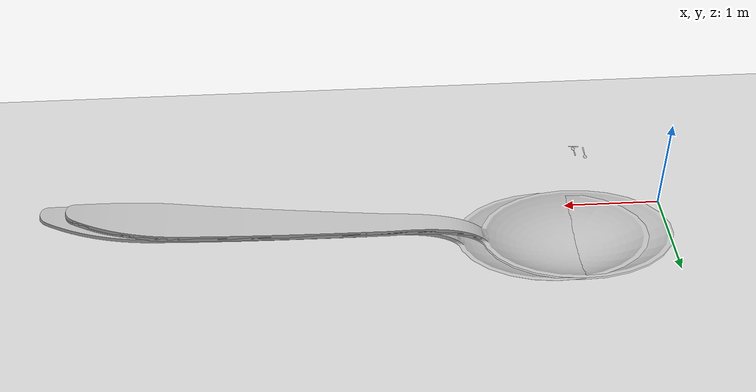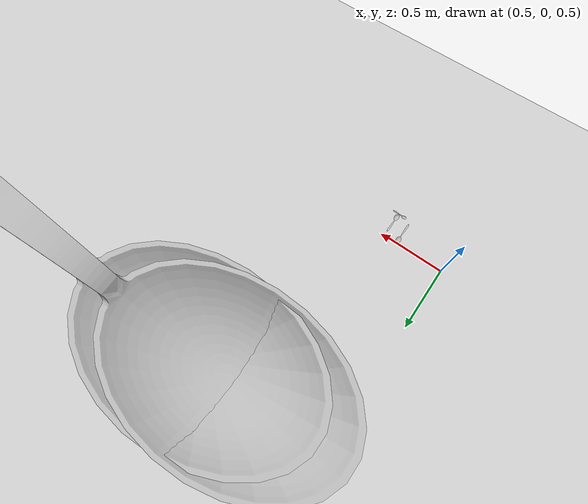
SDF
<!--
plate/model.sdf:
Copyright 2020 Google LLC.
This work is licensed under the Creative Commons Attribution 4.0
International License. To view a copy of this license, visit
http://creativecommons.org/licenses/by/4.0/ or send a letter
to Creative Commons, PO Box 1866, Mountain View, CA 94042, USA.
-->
<sdf version="1.4">
 <world name="default">
  <include><uri>model://ground_plane</uri></include>
  <include><uri>model://sun</uri></include>
  <include><uri>model://plate</uri><name>plate</name><pose>0.70 0.25 0.70 0 0 0</pose></include>
  <include><uri>model://bowl</uri><name>bowl</name><pose>0.70 0.25 0.72 0 0 0</pose></include>
  <include><uri>model://cup</uri><name>cup</name><pose>0.92 0.25 0.70 0 0 0</pose></include>
  <include><uri>model://spoon</uri><name>spoon</name><pose>1 -0.09 0.70 0 0 1.5708</pose></include>
  <include><uri>model://fork</uri><name>fork</name><pose>0.83 0.08 0.70 0 0 -1.5708</pose></include>
  <include><uri>model://knife</uri><name>knife</name><pose>0.91 -0.13 0.70 0 0 0</pose></include>
 </world>
</sdf>

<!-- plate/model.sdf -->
<sdf version="1.6">
  <model name="Threshold_Bistro_Ceramic_Dinner_Plate_Ruby_Ring">
    <link name="link_0">
      <inertial>
        <mass>0.1</mass>
        <inertia>
          <ixx>0.001</ixx>
          <ixy>0.000000</ixy>
          <ixz>0.000000</ixz>
          <iyy>0.001</iyy>
          <iyz>0.000000</iyz>
          <izz>0.001</izz>
        </inertia>
      </inertial>
      <visual name="visual">
        <geometry>
          <mesh>
            <uri>meshes/model.obj</uri>
          </mesh>
        </geometry>
      </visual>
      <collision name="collision_0">
        <geometry>
          <mesh>
            <uri>meshes/model.obj</uri>
          </mesh>
        </geometry>
      </collision>
    </link>
  </model>
</sdf>

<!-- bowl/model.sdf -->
<sdf version="1.6">
  <model name="Threshold_Bead_Cereal_Bowl_White">
    <link name="link_0">
      <inertial>
        <mass>0.1</mass>
        <inertia>
          <ixx>0.001</ixx>
          <ixy>0.000000</ixy>
          <ixz>0.000000</ixz>
          <iyy>0.001</iyy>
          <iyz>0.000000</iyz>
          <izz>0.001</izz>
        </inertia>
      </inertial>
      <visual name="visual">
        <geometry>
          <mesh>
            <uri>meshes/model.obj</uri>
          </mesh>
        </geometry>
      </visual>
      <inertial>
        <mass>0.1</mass>
        <inertia>
          <ixx>0.005</ixx>
          <iyy>0.005</iyy>
          <izz>0.0045</izz>
          <ixy>0.0</ixy>
          <ixz>0.0</ixz>
          <iyz>0.0</iyz>
        </inertia>
      </inertial>
      <collision name="collision_0">
        <geometry>
          <mesh>
            <uri>meshes/model.obj</uri>
          </mesh>
        </geometry>
      </collision>
    </link>
  </model>
</sdf>

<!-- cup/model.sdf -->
<sdf version="1.6">
  <model name="Threshold_Porcelain_Coffee_Mug_All_Over_Bead_White">
    <link name="link_0">
      <visual name="visual">
        <geometry>
          <mesh>
            <uri>meshes/model.obj</uri>
          </mesh>
        </geometry>
      </visual>
      <inertial>
        <mass>0.1</mass>
      </inertial>
      <collision name="collision_0">
        <geometry>
          <mesh>
            <uri>meshes/model.obj</uri>
          </mesh>
        </geometry>
      </collision>
    </link>
  </model>
</sdf>

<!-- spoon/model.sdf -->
<sdf version="1.6">
  <model name="Spoon">
    <link name="link_0">
      <inertial>
        <mass>0.1</mass>
        <inertia>
          <ixx>0.001</ixx>
          <ixy>0.000000</ixy>
          <ixz>0.000000</ixz>
          <iyy>0.001</iyy>
          <iyz>0.000000</iyz>
          <izz>0.001</izz>
        </inertia>
      </inertial>
      <visual name="visual">
        <geometry>
          <mesh>
            <uri>meshes/model.obj</uri>
	          <scale>0.03 0.03 0.03</scale>
          </mesh>
        </geometry>
      </visual>
      <collision name="collision_0">
        <geometry>
          <box>
            <size>0.05 0.15 0.055</size>
          </box>
        </geometry>
        <surface>
          <friction>
            <ode>
              <mu>1.0</mu>
              <mu2>1.0</mu2>
            </ode>
          </friction>
        </surface>
      </collision>
    </link>
  </model>
</sdf>

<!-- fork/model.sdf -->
<sdf version="1.6">
  <model name="fork">
    <link name="link_0">
      <inertial>
        <mass>10</mass>
        <inertia>
          <ixx>0.0125</ixx>
          <ixy>0.0</ixy>
          <ixz>0.0</ixz>
          <iyy>0.004167</iyy>
          <iyz>0.0</iyz>
          <izz>0.0125</izz>
        </inertia>
      </inertial>
      <visual name="visual">
        <geometry>
          <mesh>
            <uri>meshes/model.obj</uri>
            <scale> 0.03 0.03 0.03 </scale>
          </mesh>
        </geometry>
      </visual>
      <collision name="collision_0">
        <geometry>
          <box>
            <size>0.15 0.05 0.05</size>
          </box>
        </geometry>
        <surface>
          <friction>
            <ode>
              <mu>10.0</mu>
              <mu2>10.0</mu2>
            </ode>
          </friction>
        </surface>
      </collision>
    </link>
  </model>
</sdf>

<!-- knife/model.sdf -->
<sdf version="1.6">
  <model name="Knife">
    <link name="link_0">
      <inertial>
        <mass>0.1</mass>
        <inertia>
          <ixx>0.001</ixx>
          <ixy>0.000000</ixy>
          <ixz>0.000000</ixz>
          <iyy>0.001</iyy>
          <iyz>0.000000</iyz>
          <izz>0.001</izz>
        </inertia>
      </inertial>
      <visual name="visual">
        <geometry>
          <mesh>
            <uri>meshes/model.obj</uri>
	    <scale>0.02 0.02 0.02</scale>
          </mesh>
        </geometry>
      </visual>
      <collision name="collision_0">
        <geometry>
          <box>
            <size>0.05 0.1 0.055</size>
          </box>
        </geometry>
        <surface>
          <friction>
            <ode>
              <mu>10.0</mu>
              <mu2>10.0</mu2>
            </ode>
          </friction>
        </surface>
      </collision>
    </link>
  </model>
</sdf>
